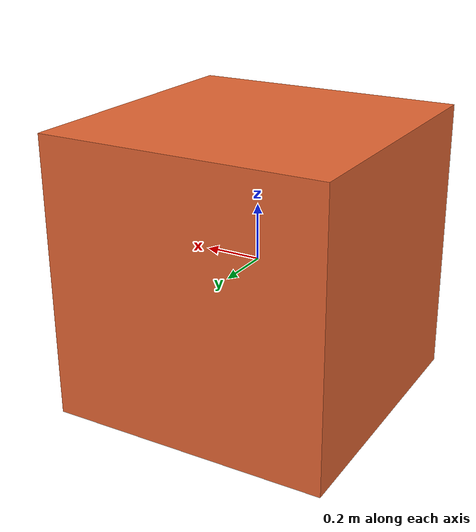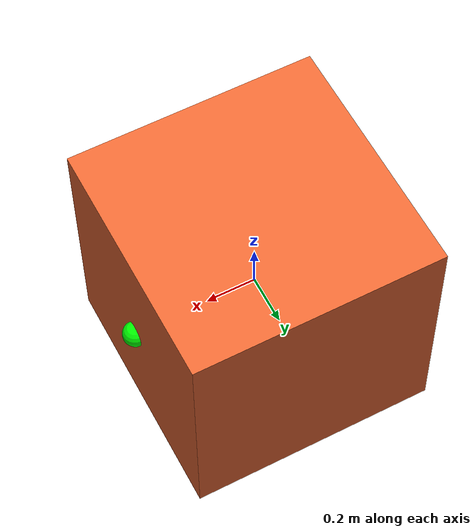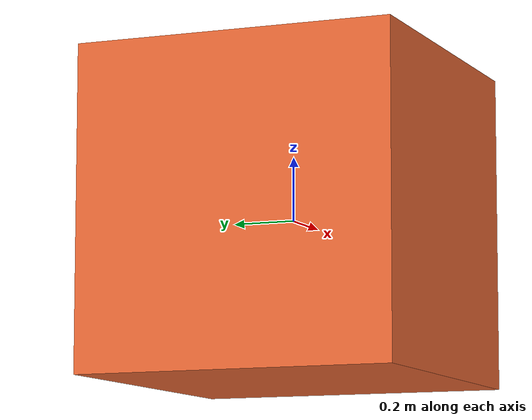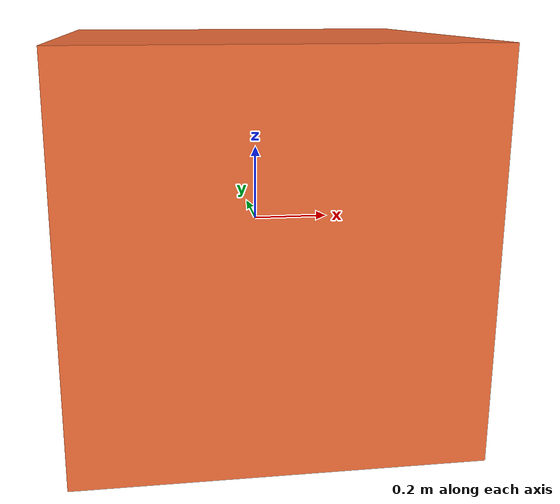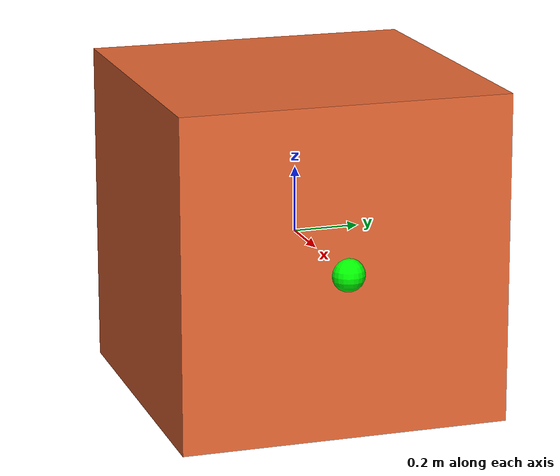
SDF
<?xml version="1.0" ?>
<sdf version="1.8">
  <model name="dock">
    <static>false</static>
    <link name="body">
      <pose>0 0 0 0 0 0</pose>
      <inertial>
        <mass>20.0</mass>
        <inertia>
          <ixx>1.0</ixx>
          <iyy>1.0</iyy>
          <izz>1.0</izz>
        </inertia>
      </inertial>

      <visual name="body_visual">
        <geometry><box><size>1.0 1.0 1.0</size></box></geometry>
        <material><ambient>0.8 0.3 0.1 1</ambient><diffuse>0.9 0.4 0.2 1</diffuse></material>
      </visual>

      <collision name="body_collision">
        <geometry><box><size>1.0 1.0 1.0</size></box></geometry>
      </collision>

      <!-- Optional small marker for the dock's docking port -->
      <visual name="port">
        <pose>0.5 0 0 0 0 0</pose>
        <geometry><sphere><radius>0.05</radius></sphere></geometry>
        <material><ambient>0 1 0 1</ambient></material>
      </visual>
    </link>
  </model>
</sdf>
